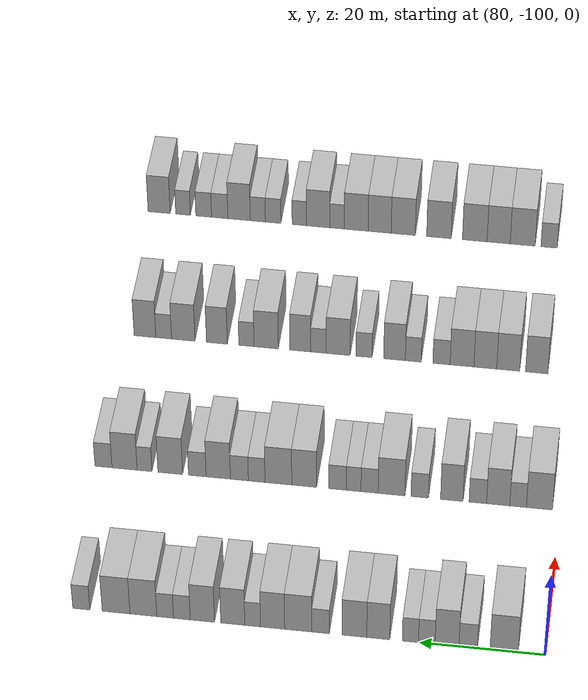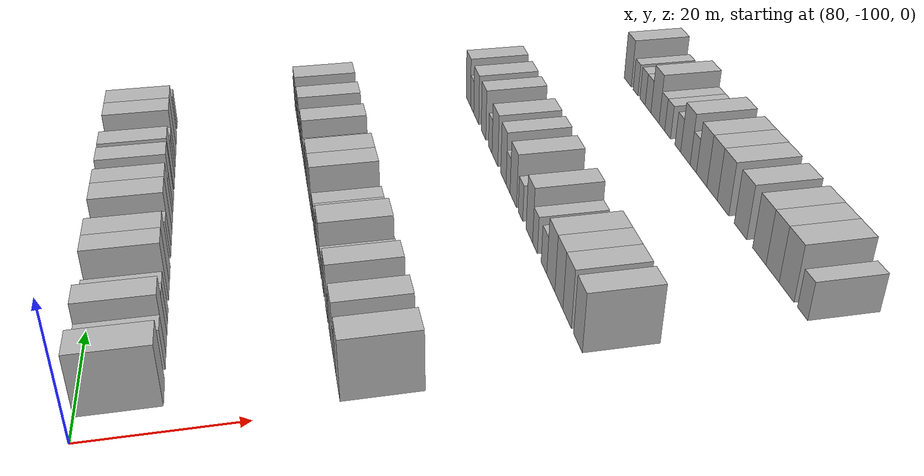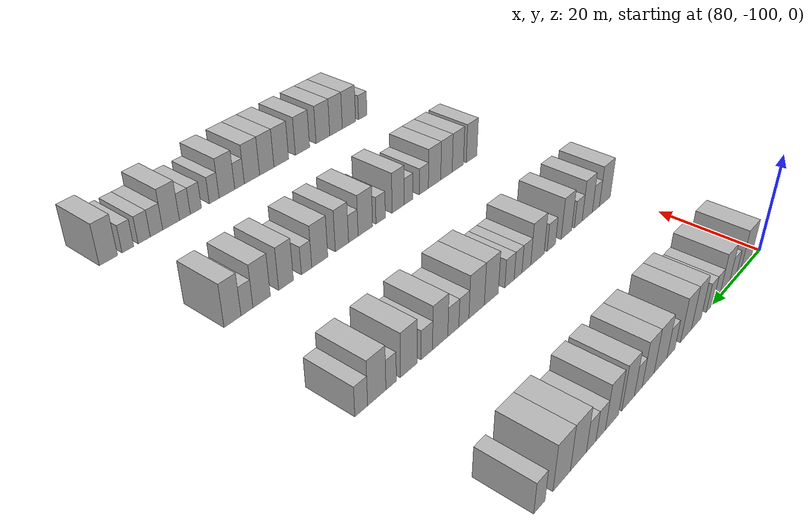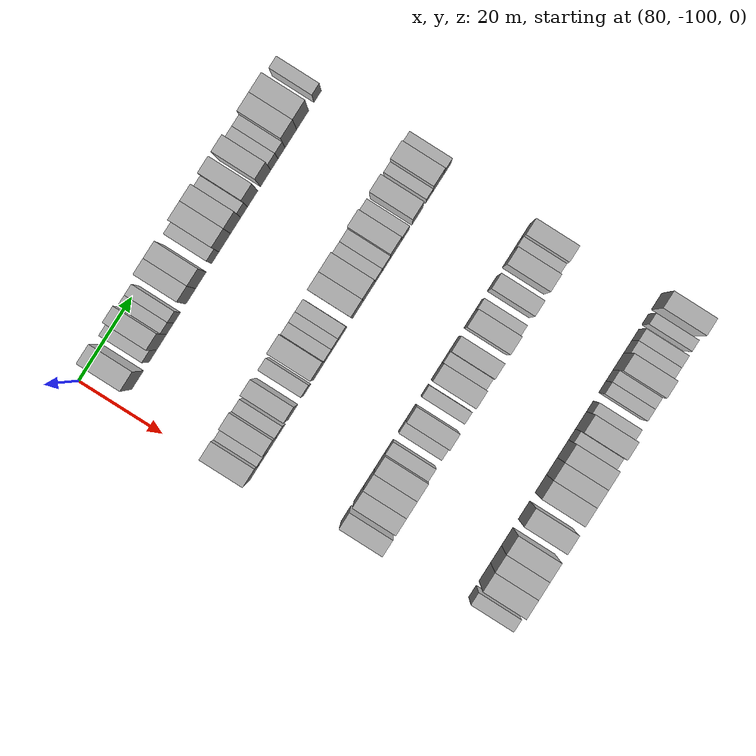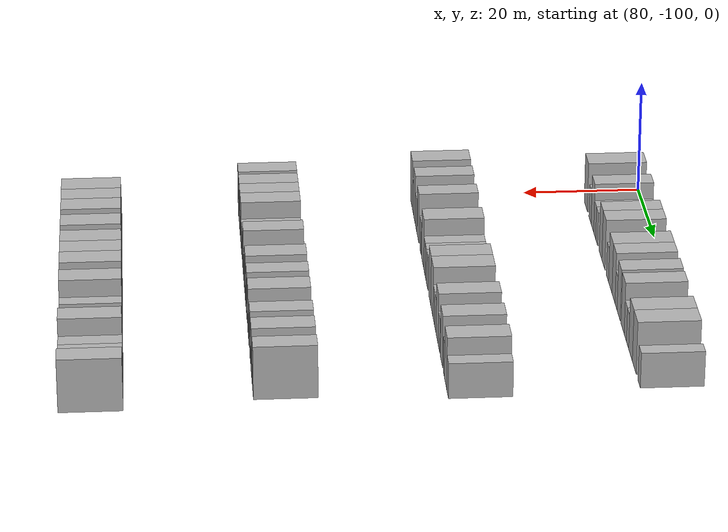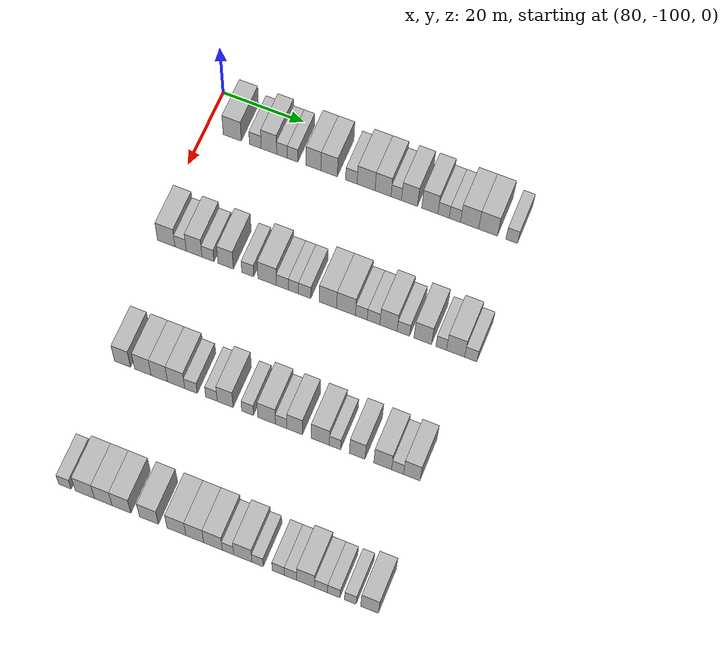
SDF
<sdf version="1.6">
 <world name="default">
  <model name="building_556">
   <static>1</static>
   <pose>85.0000 -93.4735 0 0.000000 0.000000 0.000000</pose>
   <link name="link">
    <pose>0 0 4.50 0 0 0</pose>
    <collision name="collision"><geometry><box><size>10.0000 4.4961 9.0000</size></box></geometry></collision>
    <visual name="visual">
     <cast_shadows>0</cast_shadows>
     <geometry><box><size>10.0000 4.4961 9.0000</size></box></geometry>
     <material>
      <script>
       <uri>model://HANNAS_wall/materials/scripts</uri>
       <uri>model://HANNAS_wall/materials/textures</uri>
       <name>vrc/HANNAS_wall</name>
      </script>
     </material>
    </visual>
   </link>
  </model>
  <model name="building_557">
   <static>1</static>
   <pose>85.0000 -87.7557 0 0.000000 0.000000 0.000000</pose>
   <link name="link">
    <pose>0 0 3.00 0 0 0</pose>
    <collision name="collision"><geometry><box><size>10.0000 2.9395 6.0000</size></box></geometry></collision>
    <visual name="visual">
     <cast_shadows>0</cast_shadows>
     <geometry><box><size>10.0000 2.9395 6.0000</size></box></geometry>
     <material>
      <script>
       <uri>model://HANNAS_wall/materials/scripts</uri>
       <uri>model://HANNAS_wall/materials/textures</uri>
       <name>vrc/HANNAS_wall</name>
      </script>
     </material>
    </visual>
   </link>
  </model>
  <model name="building_558">
   <static>1</static>
   <pose>85.0000 -84.3860 0 0.000000 0.000000 0.000000</pose>
   <link name="link">
    <pose>0 0 4.50 0 0 0</pose>
    <collision name="collision"><geometry><box><size>10.0000 3.7999 9.0000</size></box></geometry></collision>
    <visual name="visual">
     <cast_shadows>0</cast_shadows>
     <geometry><box><size>10.0000 3.7999 9.0000</size></box></geometry>
     <material>
      <script>
       <uri>model://HANNAS_wall/materials/scripts</uri>
       <uri>model://HANNAS_wall/materials/textures</uri>
       <name>vrc/HANNAS_wall</name>
      </script>
     </material>
    </visual>
   </link>
  </model>
  <model name="building_559">
   <static>1</static>
   <pose>85.0000 -81.1626 0 0.000000 0.000000 0.000000</pose>
   <link name="link">
    <pose>0 0 3.00 0 0 0</pose>
    <collision name="collision"><geometry><box><size>10.0000 2.6470 6.0000</size></box></geometry></collision>
    <visual name="visual">
     <cast_shadows>0</cast_shadows>
     <geometry><box><size>10.0000 2.6470 6.0000</size></box></geometry>
     <material>
      <script>
       <uri>model://HANNAS_wall/materials/scripts</uri>
       <uri>model://HANNAS_wall/materials/textures</uri>
       <name>vrc/HANNAS_wall</name>
      </script>
     </material>
    </visual>
   </link>
  </model>
  <model name="building_560">
   <static>1</static>
   <pose>85.0000 -78.5497 0 0.000000 0.000000 0.000000</pose>
   <link name="link">
    <pose>0 0 3.00 0 0 0</pose>
    <collision name="collision"><geometry><box><size>10.0000 2.5787 6.0000</size></box></geometry></collision>
    <visual name="visual">
     <cast_shadows>0</cast_shadows>
     <geometry><box><size>10.0000 2.5787 6.0000</size></box></geometry>
     <material>
      <script>
       <uri>model://HANNAS_wall/materials/scripts</uri>
       <uri>model://HANNAS_wall/materials/textures</uri>
       <name>vrc/HANNAS_wall</name>
      </script>
     </material>
    </visual>
   </link>
  </model>
  <model name="building_561">
   <static>1</static>
   <pose>85.0000 -73.4208 0 0.000000 0.000000 0.000000</pose>
   <link name="link">
    <pose>0 0 4.50 0 0 0</pose>
    <collision name="collision"><geometry><box><size>10.0000 3.6791 9.0000</size></box></geometry></collision>
    <visual name="visual">
     <cast_shadows>0</cast_shadows>
     <geometry><box><size>10.0000 3.6791 9.0000</size></box></geometry>
     <material>
      <script>
       <uri>model://HANNAS_wall/materials/scripts</uri>
       <uri>model://HANNAS_wall/materials/textures</uri>
       <name>vrc/HANNAS_wall</name>
      </script>
     </material>
    </visual>
   </link>
  </model>
  <model name="building_562">
   <static>1</static>
   <pose>85.0000 -69.5879 0 0.000000 0.000000 0.000000</pose>
   <link name="link">
    <pose>0 0 4.50 0 0 0</pose>
    <collision name="collision"><geometry><box><size>10.0000 3.9867 9.0000</size></box></geometry></collision>
    <visual name="visual">
     <cast_shadows>0</cast_shadows>
     <geometry><box><size>10.0000 3.9867 9.0000</size></box></geometry>
     <material>
      <script>
       <uri>model://HANNAS_wall/materials/scripts</uri>
       <uri>model://HANNAS_wall/materials/textures</uri>
       <name>vrc/HANNAS_wall</name>
      </script>
     </material>
    </visual>
   </link>
  </model>
  <model name="building_563">
   <static>1</static>
   <pose>85.0000 -64.1931 0 0.000000 0.000000 0.000000</pose>
   <link name="link">
    <pose>0 0 3.00 0 0 0</pose>
    <collision name="collision"><geometry><box><size>10.0000 2.8029 6.0000</size></box></geometry></collision>
    <visual name="visual">
     <cast_shadows>0</cast_shadows>
     <geometry><box><size>10.0000 2.8029 6.0000</size></box></geometry>
     <material>
      <script>
       <uri>model://HANNAS_wall/materials/scripts</uri>
       <uri>model://HANNAS_wall/materials/textures</uri>
       <name>vrc/HANNAS_wall</name>
      </script>
     </material>
    </visual>
   </link>
  </model>
  <model name="building_564">
   <static>1</static>
   <pose>85.0000 -60.6072 0 0.000000 0.000000 0.000000</pose>
   <link name="link">
    <pose>0 0 4.50 0 0 0</pose>
    <collision name="collision"><geometry><box><size>10.0000 4.3688 9.0000</size></box></geometry></collision>
    <visual name="visual">
     <cast_shadows>0</cast_shadows>
     <geometry><box><size>10.0000 4.3688 9.0000</size></box></geometry>
     <material>
      <script>
       <uri>model://HANNAS_wall/materials/scripts</uri>
       <uri>model://HANNAS_wall/materials/textures</uri>
       <name>vrc/HANNAS_wall</name>
      </script>
     </material>
    </visual>
   </link>
  </model>
  <model name="building_565">
   <static>1</static>
   <pose>85.0000 -56.4858 0 0.000000 0.000000 0.000000</pose>
   <link name="link">
    <pose>0 0 4.50 0 0 0</pose>
    <collision name="collision"><geometry><box><size>10.0000 3.8742 9.0000</size></box></geometry></collision>
    <visual name="visual">
     <cast_shadows>0</cast_shadows>
     <geometry><box><size>10.0000 3.8742 9.0000</size></box></geometry>
     <material>
      <script>
       <uri>model://HANNAS_wall/materials/scripts</uri>
       <uri>model://HANNAS_wall/materials/textures</uri>
       <name>vrc/HANNAS_wall</name>
      </script>
     </material>
    </visual>
   </link>
  </model>
  <model name="building_566">
   <static>1</static>
   <pose>85.0000 -53.2902 0 0.000000 0.000000 0.000000</pose>
   <link name="link">
    <pose>0 0 3.00 0 0 0</pose>
    <collision name="collision"><geometry><box><size>10.0000 2.5169 6.0000</size></box></geometry></collision>
    <visual name="visual">
     <cast_shadows>0</cast_shadows>
     <geometry><box><size>10.0000 2.5169 6.0000</size></box></geometry>
     <material>
      <script>
       <uri>model://HANNAS_wall/materials/scripts</uri>
       <uri>model://HANNAS_wall/materials/textures</uri>
       <name>vrc/HANNAS_wall</name>
      </script>
     </material>
    </visual>
   </link>
  </model>
  <model name="building_567">
   <static>1</static>
   <pose>85.0000 -50.0926 0 0.000000 0.000000 0.000000</pose>
   <link name="link">
    <pose>0 0 4.50 0 0 0</pose>
    <collision name="collision"><geometry><box><size>10.0000 3.8783 9.0000</size></box></geometry></collision>
    <visual name="visual">
     <cast_shadows>0</cast_shadows>
     <geometry><box><size>10.0000 3.8783 9.0000</size></box></geometry>
     <material>
      <script>
       <uri>model://HANNAS_wall/materials/scripts</uri>
       <uri>model://HANNAS_wall/materials/textures</uri>
       <name>vrc/HANNAS_wall</name>
      </script>
     </material>
    </visual>
   </link>
  </model>
  <model name="building_568">
   <static>1</static>
   <pose>85.0000 -45.1962 0 0.000000 0.000000 0.000000</pose>
   <link name="link">
    <pose>0 0 4.50 0 0 0</pose>
    <collision name="collision"><geometry><box><size>10.0000 3.9145 9.0000</size></box></geometry></collision>
    <visual name="visual">
     <cast_shadows>0</cast_shadows>
     <geometry><box><size>10.0000 3.9145 9.0000</size></box></geometry>
     <material>
      <script>
       <uri>model://HANNAS_wall/materials/scripts</uri>
       <uri>model://HANNAS_wall/materials/textures</uri>
       <name>vrc/HANNAS_wall</name>
      </script>
     </material>
    </visual>
   </link>
  </model>
  <model name="building_569">
   <static>1</static>
   <pose>85.0000 -41.8836 0 0.000000 0.000000 0.000000</pose>
   <link name="link">
    <pose>0 0 3.00 0 0 0</pose>
    <collision name="collision"><geometry><box><size>10.0000 2.7107 6.0000</size></box></geometry></collision>
    <visual name="visual">
     <cast_shadows>0</cast_shadows>
     <geometry><box><size>10.0000 2.7107 6.0000</size></box></geometry>
     <material>
      <script>
       <uri>model://HANNAS_wall/materials/scripts</uri>
       <uri>model://HANNAS_wall/materials/textures</uri>
       <name>vrc/HANNAS_wall</name>
      </script>
     </material>
    </visual>
   </link>
  </model>
  <model name="building_570">
   <static>1</static>
   <pose>85.0000 -39.1856 0 0.000000 0.000000 0.000000</pose>
   <link name="link">
    <pose>0 0 3.00 0 0 0</pose>
    <collision name="collision"><geometry><box><size>10.0000 2.6853 6.0000</size></box></geometry></collision>
    <visual name="visual">
     <cast_shadows>0</cast_shadows>
     <geometry><box><size>10.0000 2.6853 6.0000</size></box></geometry>
     <material>
      <script>
       <uri>model://HANNAS_wall/materials/scripts</uri>
       <uri>model://HANNAS_wall/materials/textures</uri>
       <name>vrc/HANNAS_wall</name>
      </script>
     </material>
    </visual>
   </link>
  </model>
  <model name="building_571">
   <static>1</static>
   <pose>85.0000 -35.6738 0 0.000000 0.000000 0.000000</pose>
   <link name="link">
    <pose>0 0 4.50 0 0 0</pose>
    <collision name="collision"><geometry><box><size>10.0000 4.3384 9.0000</size></box></geometry></collision>
    <visual name="visual">
     <cast_shadows>0</cast_shadows>
     <geometry><box><size>10.0000 4.3384 9.0000</size></box></geometry>
     <material>
      <script>
       <uri>model://HANNAS_wall/materials/scripts</uri>
       <uri>model://HANNAS_wall/materials/textures</uri>
       <name>vrc/HANNAS_wall</name>
      </script>
     </material>
    </visual>
   </link>
  </model>
  <model name="building_572">
   <static>1</static>
   <pose>85.0000 -31.2553 0 0.000000 0.000000 0.000000</pose>
   <link name="link">
    <pose>0 0 4.50 0 0 0</pose>
    <collision name="collision"><geometry><box><size>10.0000 4.4984 9.0000</size></box></geometry></collision>
    <visual name="visual">
     <cast_shadows>0</cast_shadows>
     <geometry><box><size>10.0000 4.4984 9.0000</size></box></geometry>
     <material>
      <script>
       <uri>model://HANNAS_wall/materials/scripts</uri>
       <uri>model://HANNAS_wall/materials/textures</uri>
       <name>vrc/HANNAS_wall</name>
      </script>
     </material>
    </visual>
   </link>
  </model>
  <model name="building_573">
   <static>1</static>
   <pose>85.0000 -25.6224 0 0.000000 0.000000 0.000000</pose>
   <link name="link">
    <pose>0 0 3.00 0 0 0</pose>
    <collision name="collision"><geometry><box><size>10.0000 2.7674 6.0000</size></box></geometry></collision>
    <visual name="visual">
     <cast_shadows>0</cast_shadows>
     <geometry><box><size>10.0000 2.7674 6.0000</size></box></geometry>
     <material>
      <script>
       <uri>model://HANNAS_wall/materials/scripts</uri>
       <uri>model://HANNAS_wall/materials/textures</uri>
       <name>vrc/HANNAS_wall</name>
      </script>
     </material>
    </visual>
   </link>
  </model>
  <model name="building_782">
   <static>1</static>
   <pose>115.0000 -96.5551 0 0.000000 0.000000 0.000000</pose>
   <link name="link">
    <pose>0 0 4.50 0 0 0</pose>
    <collision name="collision"><geometry><box><size>10.0000 4.2841 9.0000</size></box></geometry></collision>
    <visual name="visual">
     <cast_shadows>0</cast_shadows>
     <geometry><box><size>10.0000 4.2841 9.0000</size></box></geometry>
     <material>
      <script>
       <uri>model://HANNAS_wall/materials/scripts</uri>
       <uri>model://HANNAS_wall/materials/textures</uri>
       <name>vrc/HANNAS_wall</name>
      </script>
     </material>
    </visual>
   </link>
  </model>
  <model name="building_783">
   <static>1</static>
   <pose>115.0000 -93.0472 0 0.000000 0.000000 0.000000</pose>
   <link name="link">
    <pose>0 0 3.00 0 0 0</pose>
    <collision name="collision"><geometry><box><size>10.0000 2.7316 6.0000</size></box></geometry></collision>
    <visual name="visual">
     <cast_shadows>0</cast_shadows>
     <geometry><box><size>10.0000 2.7316 6.0000</size></box></geometry>
     <material>
      <script>
       <uri>model://HANNAS_wall/materials/scripts</uri>
       <uri>model://HANNAS_wall/materials/textures</uri>
       <name>vrc/HANNAS_wall</name>
      </script>
     </material>
    </visual>
   </link>
  </model>
  <model name="building_784">
   <static>1</static>
   <pose>115.0000 -89.7655 0 0.000000 0.000000 0.000000</pose>
   <link name="link">
    <pose>0 0 4.50 0 0 0</pose>
    <collision name="collision"><geometry><box><size>10.0000 3.8319 9.0000</size></box></geometry></collision>
    <visual name="visual">
     <cast_shadows>0</cast_shadows>
     <geometry><box><size>10.0000 3.8319 9.0000</size></box></geometry>
     <material>
      <script>
       <uri>model://HANNAS_wall/materials/scripts</uri>
       <uri>model://HANNAS_wall/materials/textures</uri>
       <name>vrc/HANNAS_wall</name>
      </script>
     </material>
    </visual>
   </link>
  </model>
  <model name="building_785">
   <static>1</static>
   <pose>115.0000 -86.4086 0 0.000000 0.000000 0.000000</pose>
   <link name="link">
    <pose>0 0 3.00 0 0 0</pose>
    <collision name="collision"><geometry><box><size>10.0000 2.8818 6.0000</size></box></geometry></collision>
    <visual name="visual">
     <cast_shadows>0</cast_shadows>
     <geometry><box><size>10.0000 2.8818 6.0000</size></box></geometry>
     <material>
      <script>
       <uri>model://HANNAS_wall/materials/scripts</uri>
       <uri>model://HANNAS_wall/materials/textures</uri>
       <name>vrc/HANNAS_wall</name>
      </script>
     </material>
    </visual>
   </link>
  </model>
  <model name="building_786">
   <static>1</static>
   <pose>115.0000 -82.1113 0 0.000000 0.000000 0.000000</pose>
   <link name="link">
    <pose>0 0 4.50 0 0 0</pose>
    <collision name="collision"><geometry><box><size>10.0000 3.7129 9.0000</size></box></geometry></collision>
    <visual name="visual">
     <cast_shadows>0</cast_shadows>
     <geometry><box><size>10.0000 3.7129 9.0000</size></box></geometry>
     <material>
      <script>
       <uri>model://HANNAS_wall/materials/scripts</uri>
       <uri>model://HANNAS_wall/materials/textures</uri>
       <name>vrc/HANNAS_wall</name>
      </script>
     </material>
    </visual>
   </link>
  </model>
  <model name="building_787">
   <static>1</static>
   <pose>115.0000 -76.8073 0 0.000000 0.000000 0.000000</pose>
   <link name="link">
    <pose>0 0 3.00 0 0 0</pose>
    <collision name="collision"><geometry><box><size>10.0000 2.8951 6.0000</size></box></geometry></collision>
    <visual name="visual">
     <cast_shadows>0</cast_shadows>
     <geometry><box><size>10.0000 2.8951 6.0000</size></box></geometry>
     <material>
      <script>
       <uri>model://HANNAS_wall/materials/scripts</uri>
       <uri>model://HANNAS_wall/materials/textures</uri>
       <name>vrc/HANNAS_wall</name>
      </script>
     </material>
    </visual>
   </link>
  </model>
  <model name="building_788">
   <static>1</static>
   <pose>115.0000 -72.1431 0 0.000000 0.000000 0.000000</pose>
   <link name="link">
    <pose>0 0 4.50 0 0 0</pose>
    <collision name="collision"><geometry><box><size>10.0000 4.4333 9.0000</size></box></geometry></collision>
    <visual name="visual">
     <cast_shadows>0</cast_shadows>
     <geometry><box><size>10.0000 4.4333 9.0000</size></box></geometry>
     <material>
      <script>
       <uri>model://HANNAS_wall/materials/scripts</uri>
       <uri>model://HANNAS_wall/materials/textures</uri>
       <name>vrc/HANNAS_wall</name>
      </script>
     </material>
    </visual>
   </link>
  </model>
  <model name="building_789">
   <static>1</static>
   <pose>115.0000 -68.5012 0 0.000000 0.000000 0.000000</pose>
   <link name="link">
    <pose>0 0 3.00 0 0 0</pose>
    <collision name="collision"><geometry><box><size>10.0000 2.8504 6.0000</size></box></geometry></collision>
    <visual name="visual">
     <cast_shadows>0</cast_shadows>
     <geometry><box><size>10.0000 2.8504 6.0000</size></box></geometry>
     <material>
      <script>
       <uri>model://HANNAS_wall/materials/scripts</uri>
       <uri>model://HANNAS_wall/materials/textures</uri>
       <name>vrc/HANNAS_wall</name>
      </script>
     </material>
    </visual>
   </link>
  </model>
  <model name="building_790">
   <static>1</static>
   <pose>115.0000 -65.8462 0 0.000000 0.000000 0.000000</pose>
   <link name="link">
    <pose>0 0 3.00 0 0 0</pose>
    <collision name="collision"><geometry><box><size>10.0000 2.4597 6.0000</size></box></geometry></collision>
    <visual name="visual">
     <cast_shadows>0</cast_shadows>
     <geometry><box><size>10.0000 2.4597 6.0000</size></box></geometry>
     <material>
      <script>
       <uri>model://HANNAS_wall/materials/scripts</uri>
       <uri>model://HANNAS_wall/materials/textures</uri>
       <name>vrc/HANNAS_wall</name>
      </script>
     </material>
    </visual>
   </link>
  </model>
  <model name="building_791">
   <static>1</static>
   <pose>115.0000 -63.1604 0 0.000000 0.000000 0.000000</pose>
   <link name="link">
    <pose>0 0 3.00 0 0 0</pose>
    <collision name="collision"><geometry><box><size>10.0000 2.9119 6.0000</size></box></geometry></collision>
    <visual name="visual">
     <cast_shadows>0</cast_shadows>
     <geometry><box><size>10.0000 2.9119 6.0000</size></box></geometry>
     <material>
      <script>
       <uri>model://HANNAS_wall/materials/scripts</uri>
       <uri>model://HANNAS_wall/materials/textures</uri>
       <name>vrc/HANNAS_wall</name>
      </script>
     </material>
    </visual>
   </link>
  </model>
  <model name="building_792">
   <static>1</static>
   <pose>115.0000 -57.6357 0 0.000000 0.000000 0.000000</pose>
   <link name="link">
    <pose>0 0 4.50 0 0 0</pose>
    <collision name="collision"><geometry><box><size>10.0000 4.1374 9.0000</size></box></geometry></collision>
    <visual name="visual">
     <cast_shadows>0</cast_shadows>
     <geometry><box><size>10.0000 4.1374 9.0000</size></box></geometry>
     <material>
      <script>
       <uri>model://HANNAS_wall/materials/scripts</uri>
       <uri>model://HANNAS_wall/materials/textures</uri>
       <name>vrc/HANNAS_wall</name>
      </script>
     </material>
    </visual>
   </link>
  </model>
  <model name="building_793">
   <static>1</static>
   <pose>115.0000 -53.3440 0 0.000000 0.000000 0.000000</pose>
   <link name="link">
    <pose>0 0 4.50 0 0 0</pose>
    <collision name="collision"><geometry><box><size>10.0000 4.4460 9.0000</size></box></geometry></collision>
    <visual name="visual">
     <cast_shadows>0</cast_shadows>
     <geometry><box><size>10.0000 4.4460 9.0000</size></box></geometry>
     <material>
      <script>
       <uri>model://HANNAS_wall/materials/scripts</uri>
       <uri>model://HANNAS_wall/materials/textures</uri>
       <name>vrc/HANNAS_wall</name>
      </script>
     </material>
    </visual>
   </link>
  </model>
  <model name="building_794">
   <static>1</static>
   <pose>115.0000 -49.7245 0 0.000000 0.000000 0.000000</pose>
   <link name="link">
    <pose>0 0 3.00 0 0 0</pose>
    <collision name="collision"><geometry><box><size>10.0000 2.7931 6.0000</size></box></geometry></collision>
    <visual name="visual">
     <cast_shadows>0</cast_shadows>
     <geometry><box><size>10.0000 2.7931 6.0000</size></box></geometry>
     <material>
      <script>
       <uri>model://HANNAS_wall/materials/scripts</uri>
       <uri>model://HANNAS_wall/materials/textures</uri>
       <name>vrc/HANNAS_wall</name>
      </script>
     </material>
    </visual>
   </link>
  </model>
  <model name="building_795">
   <static>1</static>
   <pose>115.0000 -46.8283 0 0.000000 0.000000 0.000000</pose>
   <link name="link">
    <pose>0 0 3.00 0 0 0</pose>
    <collision name="collision"><geometry><box><size>10.0000 2.9991 6.0000</size></box></geometry></collision>
    <visual name="visual">
     <cast_shadows>0</cast_shadows>
     <geometry><box><size>10.0000 2.9991 6.0000</size></box></geometry>
     <material>
      <script>
       <uri>model://HANNAS_wall/materials/scripts</uri>
       <uri>model://HANNAS_wall/materials/textures</uri>
       <name>vrc/HANNAS_wall</name>
      </script>
     </material>
    </visual>
   </link>
  </model>
  <model name="building_796">
   <static>1</static>
   <pose>115.0000 -43.3021 0 0.000000 0.000000 0.000000</pose>
   <link name="link">
    <pose>0 0 4.50 0 0 0</pose>
    <collision name="collision"><geometry><box><size>10.0000 4.0533 9.0000</size></box></geometry></collision>
    <visual name="visual">
     <cast_shadows>0</cast_shadows>
     <geometry><box><size>10.0000 4.0533 9.0000</size></box></geometry>
     <material>
      <script>
       <uri>model://HANNAS_wall/materials/scripts</uri>
       <uri>model://HANNAS_wall/materials/textures</uri>
       <name>vrc/HANNAS_wall</name>
      </script>
     </material>
    </visual>
   </link>
  </model>
  <model name="building_797">
   <static>1</static>
   <pose>115.0000 -39.8076 0 0.000000 0.000000 0.000000</pose>
   <link name="link">
    <pose>0 0 3.00 0 0 0</pose>
    <collision name="collision"><geometry><box><size>10.0000 2.9357 6.0000</size></box></geometry></collision>
    <visual name="visual">
     <cast_shadows>0</cast_shadows>
     <geometry><box><size>10.0000 2.9357 6.0000</size></box></geometry>
     <material>
      <script>
       <uri>model://HANNAS_wall/materials/scripts</uri>
       <uri>model://HANNAS_wall/materials/textures</uri>
       <name>vrc/HANNAS_wall</name>
      </script>
     </material>
    </visual>
   </link>
  </model>
  <model name="building_798">
   <static>1</static>
   <pose>115.0000 -35.2749 0 0.000000 0.000000 0.000000</pose>
   <link name="link">
    <pose>0 0 4.50 0 0 0</pose>
    <collision name="collision"><geometry><box><size>10.0000 4.1298 9.0000</size></box></geometry></collision>
    <visual name="visual">
     <cast_shadows>0</cast_shadows>
     <geometry><box><size>10.0000 4.1298 9.0000</size></box></geometry>
     <material>
      <script>
       <uri>model://HANNAS_wall/materials/scripts</uri>
       <uri>model://HANNAS_wall/materials/textures</uri>
       <name>vrc/HANNAS_wall</name>
      </script>
     </material>
    </visual>
   </link>
  </model>
  <model name="building_799">
   <static>1</static>
   <pose>115.0000 -30.9714 0 0.000000 0.000000 0.000000</pose>
   <link name="link">
    <pose>0 0 3.00 0 0 0</pose>
    <collision name="collision"><geometry><box><size>10.0000 2.4772 6.0000</size></box></geometry></collision>
    <visual name="visual">
     <cast_shadows>0</cast_shadows>
     <geometry><box><size>10.0000 2.4772 6.0000</size></box></geometry>
     <material>
      <script>
       <uri>model://HANNAS_wall/materials/scripts</uri>
       <uri>model://HANNAS_wall/materials/textures</uri>
       <name>vrc/HANNAS_wall</name>
      </script>
     </material>
    </visual>
   </link>
  </model>
  <model name="building_800">
   <static>1</static>
   <pose>115.0000 -27.6182 0 0.000000 0.000000 0.000000</pose>
   <link name="link">
    <pose>0 0 4.50 0 0 0</pose>
    <collision name="collision"><geometry><box><size>10.0000 4.2292 9.0000</size></box></geometry></collision>
    <visual name="visual">
     <cast_shadows>0</cast_shadows>
     <geometry><box><size>10.0000 4.2292 9.0000</size></box></geometry>
     <material>
      <script>
       <uri>model://HANNAS_wall/materials/scripts</uri>
       <uri>model://HANNAS_wall/materials/textures</uri>
       <name>vrc/HANNAS_wall</name>
      </script>
     </material>
    </visual>
   </link>
  </model>
  <model name="building_801">
   <static>1</static>
   <pose>115.0000 -24.0736 0 0.000000 0.000000 0.000000</pose>
   <link name="link">
    <pose>0 0 3.00 0 0 0</pose>
    <collision name="collision"><geometry><box><size>10.0000 2.8601 6.0000</size></box></geometry></collision>
    <visual name="visual">
     <cast_shadows>0</cast_shadows>
     <geometry><box><size>10.0000 2.8601 6.0000</size></box></geometry>
     <material>
      <script>
       <uri>model://HANNAS_wall/materials/scripts</uri>
       <uri>model://HANNAS_wall/materials/textures</uri>
       <name>vrc/HANNAS_wall</name>
      </script>
     </material>
    </visual>
   </link>
  </model>
  <model name="building_1007">
   <static>1</static>
   <pose>145.0000 -93.5807 0 0.000000 0.000000 0.000000</pose>
   <link name="link">
    <pose>0 0 4.50 0 0 0</pose>
    <collision name="collision"><geometry><box><size>10.0000 3.8099 9.0000</size></box></geometry></collision>
    <visual name="visual">
     <cast_shadows>0</cast_shadows>
     <geometry><box><size>10.0000 3.8099 9.0000</size></box></geometry>
     <material>
      <script>
       <uri>model://HANNAS_wall/materials/scripts</uri>
       <uri>model://HANNAS_wall/materials/textures</uri>
       <name>vrc/HANNAS_wall</name>
      </script>
     </material>
    </visual>
   </link>
  </model>
  <model name="building_1008">
   <static>1</static>
   <pose>145.0000 -88.7167 0 0.000000 0.000000 0.000000</pose>
   <link name="link">
    <pose>0 0 4.50 0 0 0</pose>
    <collision name="collision"><geometry><box><size>10.0000 3.9180 9.0000</size></box></geometry></collision>
    <visual name="visual">
     <cast_shadows>0</cast_shadows>
     <geometry><box><size>10.0000 3.9180 9.0000</size></box></geometry>
     <material>
      <script>
       <uri>model://HANNAS_wall/materials/scripts</uri>
       <uri>model://HANNAS_wall/materials/textures</uri>
       <name>vrc/HANNAS_wall</name>
      </script>
     </material>
    </visual>
   </link>
  </model>
  <model name="building_1009">
   <static>1</static>
   <pose>145.0000 -84.8144 0 0.000000 0.000000 0.000000</pose>
   <link name="link">
    <pose>0 0 4.50 0 0 0</pose>
    <collision name="collision"><geometry><box><size>10.0000 3.8867 9.0000</size></box></geometry></collision>
    <visual name="visual">
     <cast_shadows>0</cast_shadows>
     <geometry><box><size>10.0000 3.8867 9.0000</size></box></geometry>
     <material>
      <script>
       <uri>model://HANNAS_wall/materials/scripts</uri>
       <uri>model://HANNAS_wall/materials/textures</uri>
       <name>vrc/HANNAS_wall</name>
      </script>
     </material>
    </visual>
   </link>
  </model>
  <model name="building_1010">
   <static>1</static>
   <pose>145.0000 -80.8288 0 0.000000 0.000000 0.000000</pose>
   <link name="link">
    <pose>0 0 4.50 0 0 0</pose>
    <collision name="collision"><geometry><box><size>10.0000 4.0845 9.0000</size></box></geometry></collision>
    <visual name="visual">
     <cast_shadows>0</cast_shadows>
     <geometry><box><size>10.0000 4.0845 9.0000</size></box></geometry>
     <material>
      <script>
       <uri>model://HANNAS_wall/materials/scripts</uri>
       <uri>model://HANNAS_wall/materials/textures</uri>
       <name>vrc/HANNAS_wall</name>
      </script>
     </material>
    </visual>
   </link>
  </model>
  <model name="building_1011">
   <static>1</static>
   <pose>145.0000 -77.3082 0 0.000000 0.000000 0.000000</pose>
   <link name="link">
    <pose>0 0 3.00 0 0 0</pose>
    <collision name="collision"><geometry><box><size>10.0000 2.9568 6.0000</size></box></geometry></collision>
    <visual name="visual">
     <cast_shadows>0</cast_shadows>
     <geometry><box><size>10.0000 2.9568 6.0000</size></box></geometry>
     <material>
      <script>
       <uri>model://HANNAS_wall/materials/scripts</uri>
       <uri>model://HANNAS_wall/materials/textures</uri>
       <name>vrc/HANNAS_wall</name>
      </script>
     </material>
    </visual>
   </link>
  </model>
  <model name="building_1012">
   <static>1</static>
   <pose>145.0000 -72.4718 0 0.000000 0.000000 0.000000</pose>
   <link name="link">
    <pose>0 0 3.00 0 0 0</pose>
    <collision name="collision"><geometry><box><size>10.0000 2.7159 6.0000</size></box></geometry></collision>
    <visual name="visual">
     <cast_shadows>0</cast_shadows>
     <geometry><box><size>10.0000 2.7159 6.0000</size></box></geometry>
     <material>
      <script>
       <uri>model://HANNAS_wall/materials/scripts</uri>
       <uri>model://HANNAS_wall/materials/textures</uri>
       <name>vrc/HANNAS_wall</name>
      </script>
     </material>
    </visual>
   </link>
  </model>
  <model name="building_1013">
   <static>1</static>
   <pose>145.0000 -69.2576 0 0.000000 0.000000 0.000000</pose>
   <link name="link">
    <pose>0 0 4.50 0 0 0</pose>
    <collision name="collision"><geometry><box><size>10.0000 3.7127 9.0000</size></box></geometry></collision>
    <visual name="visual">
     <cast_shadows>0</cast_shadows>
     <geometry><box><size>10.0000 3.7127 9.0000</size></box></geometry>
     <material>
      <script>
       <uri>model://HANNAS_wall/materials/scripts</uri>
       <uri>model://HANNAS_wall/materials/textures</uri>
       <name>vrc/HANNAS_wall</name>
      </script>
     </material>
    </visual>
   </link>
  </model>
  <model name="building_1014">
   <static>1</static>
   <pose>145.0000 -64.0193 0 0.000000 0.000000 0.000000</pose>
   <link name="link">
    <pose>0 0 3.00 0 0 0</pose>
    <collision name="collision"><geometry><box><size>10.0000 2.7638 6.0000</size></box></geometry></collision>
    <visual name="visual">
     <cast_shadows>0</cast_shadows>
     <geometry><box><size>10.0000 2.7638 6.0000</size></box></geometry>
     <material>
      <script>
       <uri>model://HANNAS_wall/materials/scripts</uri>
       <uri>model://HANNAS_wall/materials/textures</uri>
       <name>vrc/HANNAS_wall</name>
      </script>
     </material>
    </visual>
   </link>
  </model>
  <model name="building_1015">
   <static>1</static>
   <pose>145.0000 -59.5792 0 0.000000 0.000000 0.000000</pose>
   <link name="link">
    <pose>0 0 4.50 0 0 0</pose>
    <collision name="collision"><geometry><box><size>10.0000 4.1166 9.0000</size></box></geometry></collision>
    <visual name="visual">
     <cast_shadows>0</cast_shadows>
     <geometry><box><size>10.0000 4.1166 9.0000</size></box></geometry>
     <material>
      <script>
       <uri>model://HANNAS_wall/materials/scripts</uri>
       <uri>model://HANNAS_wall/materials/textures</uri>
       <name>vrc/HANNAS_wall</name>
      </script>
     </material>
    </visual>
   </link>
  </model>
  <model name="building_1016">
   <static>1</static>
   <pose>145.0000 -56.1876 0 0.000000 0.000000 0.000000</pose>
   <link name="link">
    <pose>0 0 3.00 0 0 0</pose>
    <collision name="collision"><geometry><box><size>10.0000 2.6666 6.0000</size></box></geometry></collision>
    <visual name="visual">
     <cast_shadows>0</cast_shadows>
     <geometry><box><size>10.0000 2.6666 6.0000</size></box></geometry>
     <material>
      <script>
       <uri>model://HANNAS_wall/materials/scripts</uri>
       <uri>model://HANNAS_wall/materials/textures</uri>
       <name>vrc/HANNAS_wall</name>
      </script>
     </material>
    </visual>
   </link>
  </model>
  <model name="building_1017">
   <static>1</static>
   <pose>145.0000 -53.0483 0 0.000000 0.000000 0.000000</pose>
   <link name="link">
    <pose>0 0 4.50 0 0 0</pose>
    <collision name="collision"><geometry><box><size>10.0000 3.6118 9.0000</size></box></geometry></collision>
    <visual name="visual">
     <cast_shadows>0</cast_shadows>
     <geometry><box><size>10.0000 3.6118 9.0000</size></box></geometry>
     <material>
      <script>
       <uri>model://HANNAS_wall/materials/scripts</uri>
       <uri>model://HANNAS_wall/materials/textures</uri>
       <name>vrc/HANNAS_wall</name>
      </script>
     </material>
    </visual>
   </link>
  </model>
  <model name="building_1018">
   <static>1</static>
   <pose>145.0000 -47.1475 0 0.000000 0.000000 0.000000</pose>
   <link name="link">
    <pose>0 0 4.50 0 0 0</pose>
    <collision name="collision"><geometry><box><size>10.0000 4.1899 9.0000</size></box></geometry></collision>
    <visual name="visual">
     <cast_shadows>0</cast_shadows>
     <geometry><box><size>10.0000 4.1899 9.0000</size></box></geometry>
     <material>
      <script>
       <uri>model://HANNAS_wall/materials/scripts</uri>
       <uri>model://HANNAS_wall/materials/textures</uri>
       <name>vrc/HANNAS_wall</name>
      </script>
     </material>
    </visual>
   </link>
  </model>
  <model name="building_1019">
   <static>1</static>
   <pose>145.0000 -43.7399 0 0.000000 0.000000 0.000000</pose>
   <link name="link">
    <pose>0 0 3.00 0 0 0</pose>
    <collision name="collision"><geometry><box><size>10.0000 2.6252 6.0000</size></box></geometry></collision>
    <visual name="visual">
     <cast_shadows>0</cast_shadows>
     <geometry><box><size>10.0000 2.6252 6.0000</size></box></geometry>
     <material>
      <script>
       <uri>model://HANNAS_wall/materials/scripts</uri>
       <uri>model://HANNAS_wall/materials/textures</uri>
       <name>vrc/HANNAS_wall</name>
      </script>
     </material>
    </visual>
   </link>
  </model>
  <model name="building_1020">
   <static>1</static>
   <pose>145.0000 -38.6248 0 0.000000 0.000000 0.000000</pose>
   <link name="link">
    <pose>0 0 4.50 0 0 0</pose>
    <collision name="collision"><geometry><box><size>10.0000 3.6049 9.0000</size></box></geometry></collision>
    <visual name="visual">
     <cast_shadows>0</cast_shadows>
     <geometry><box><size>10.0000 3.6049 9.0000</size></box></geometry>
     <material>
      <script>
       <uri>model://HANNAS_wall/materials/scripts</uri>
       <uri>model://HANNAS_wall/materials/textures</uri>
       <name>vrc/HANNAS_wall</name>
      </script>
     </material>
    </visual>
   </link>
  </model>
  <model name="building_1021">
   <static>1</static>
   <pose>145.0000 -32.7917 0 0.000000 0.000000 0.000000</pose>
   <link name="link">
    <pose>0 0 4.50 0 0 0</pose>
    <collision name="collision"><geometry><box><size>10.0000 4.0613 9.0000</size></box></geometry></collision>
    <visual name="visual">
     <cast_shadows>0</cast_shadows>
     <geometry><box><size>10.0000 4.0613 9.0000</size></box></geometry>
     <material>
      <script>
       <uri>model://HANNAS_wall/materials/scripts</uri>
       <uri>model://HANNAS_wall/materials/textures</uri>
       <name>vrc/HANNAS_wall</name>
      </script>
     </material>
    </visual>
   </link>
  </model>
  <model name="building_1022">
   <static>1</static>
   <pose>145.0000 -29.3999 0 0.000000 0.000000 0.000000</pose>
   <link name="link">
    <pose>0 0 3.00 0 0 0</pose>
    <collision name="collision"><geometry><box><size>10.0000 2.7223 6.0000</size></box></geometry></collision>
    <visual name="visual">
     <cast_shadows>0</cast_shadows>
     <geometry><box><size>10.0000 2.7223 6.0000</size></box></geometry>
     <material>
      <script>
       <uri>model://HANNAS_wall/materials/scripts</uri>
       <uri>model://HANNAS_wall/materials/textures</uri>
       <name>vrc/HANNAS_wall</name>
      </script>
     </material>
    </visual>
   </link>
  </model>
  <model name="building_1023">
   <static>1</static>
   <pose>145.0000 -26.1529 0 0.000000 0.000000 0.000000</pose>
   <link name="link">
    <pose>0 0 4.50 0 0 0</pose>
    <collision name="collision"><geometry><box><size>10.0000 3.7719 9.0000</size></box></geometry></collision>
    <visual name="visual">
     <cast_shadows>0</cast_shadows>
     <geometry><box><size>10.0000 3.7719 9.0000</size></box></geometry>
     <material>
      <script>
       <uri>model://HANNAS_wall/materials/scripts</uri>
       <uri>model://HANNAS_wall/materials/textures</uri>
       <name>vrc/HANNAS_wall</name>
      </script>
     </material>
    </visual>
   </link>
  </model>
  <model name="building_1234">
   <static>1</static>
   <pose>175.0000 -93.2303 0 0.000000 0.000000 0.000000</pose>
   <link name="link">
    <pose>0 0 3.00 0 0 0</pose>
    <collision name="collision"><geometry><box><size>10.0000 2.8915 6.0000</size></box></geometry></collision>
    <visual name="visual">
     <cast_shadows>0</cast_shadows>
     <geometry><box><size>10.0000 2.8915 6.0000</size></box></geometry>
     <material>
      <script>
       <uri>model://HANNAS_wall/materials/scripts</uri>
       <uri>model://HANNAS_wall/materials/textures</uri>
       <name>vrc/HANNAS_wall</name>
      </script>
     </material>
    </visual>
   </link>
  </model>
  <model name="building_1235">
   <static>1</static>
   <pose>175.0000 -88.5780 0 0.000000 0.000000 0.000000</pose>
   <link name="link">
    <pose>0 0 4.50 0 0 0</pose>
    <collision name="collision"><geometry><box><size>10.0000 4.4131 9.0000</size></box></geometry></collision>
    <visual name="visual">
     <cast_shadows>0</cast_shadows>
     <geometry><box><size>10.0000 4.4131 9.0000</size></box></geometry>
     <material>
      <script>
       <uri>model://HANNAS_wall/materials/scripts</uri>
       <uri>model://HANNAS_wall/materials/textures</uri>
       <name>vrc/HANNAS_wall</name>
      </script>
     </material>
    </visual>
   </link>
  </model>
  <model name="building_1236">
   <static>1</static>
   <pose>175.0000 -84.3289 0 0.000000 0.000000 0.000000</pose>
   <link name="link">
    <pose>0 0 4.50 0 0 0</pose>
    <collision name="collision"><geometry><box><size>10.0000 4.0853 9.0000</size></box></geometry></collision>
    <visual name="visual">
     <cast_shadows>0</cast_shadows>
     <geometry><box><size>10.0000 4.0853 9.0000</size></box></geometry>
     <material>
      <script>
       <uri>model://HANNAS_wall/materials/scripts</uri>
       <uri>model://HANNAS_wall/materials/textures</uri>
       <name>vrc/HANNAS_wall</name>
      </script>
     </material>
    </visual>
   </link>
  </model>
  <model name="building_1237">
   <static>1</static>
   <pose>175.0000 -80.1066 0 0.000000 0.000000 0.000000</pose>
   <link name="link">
    <pose>0 0 4.50 0 0 0</pose>
    <collision name="collision"><geometry><box><size>10.0000 4.3592 9.0000</size></box></geometry></collision>
    <visual name="visual">
     <cast_shadows>0</cast_shadows>
     <geometry><box><size>10.0000 4.3592 9.0000</size></box></geometry>
     <material>
      <script>
       <uri>model://HANNAS_wall/materials/scripts</uri>
       <uri>model://HANNAS_wall/materials/textures</uri>
       <name>vrc/HANNAS_wall</name>
      </script>
     </material>
    </visual>
   </link>
  </model>
  <model name="building_1238">
   <static>1</static>
   <pose>175.0000 -73.7531 0 0.000000 0.000000 0.000000</pose>
   <link name="link">
    <pose>0 0 4.50 0 0 0</pose>
    <collision name="collision"><geometry><box><size>10.0000 4.3479 9.0000</size></box></geometry></collision>
    <visual name="visual">
     <cast_shadows>0</cast_shadows>
     <geometry><box><size>10.0000 4.3479 9.0000</size></box></geometry>
     <material>
      <script>
       <uri>model://HANNAS_wall/materials/scripts</uri>
       <uri>model://HANNAS_wall/materials/textures</uri>
       <name>vrc/HANNAS_wall</name>
      </script>
     </material>
    </visual>
   </link>
  </model>
  <model name="building_1239">
   <static>1</static>
   <pose>175.0000 -67.4271 0 0.000000 0.000000 0.000000</pose>
   <link name="link">
    <pose>0 0 4.50 0 0 0</pose>
    <collision name="collision"><geometry><box><size>10.0000 4.3040 9.0000</size></box></geometry></collision>
    <visual name="visual">
     <cast_shadows>0</cast_shadows>
     <geometry><box><size>10.0000 4.3040 9.0000</size></box></geometry>
     <material>
      <script>
       <uri>model://HANNAS_wall/materials/scripts</uri>
       <uri>model://HANNAS_wall/materials/textures</uri>
       <name>vrc/HANNAS_wall</name>
      </script>
     </material>
    </visual>
   </link>
  </model>
  <model name="building_1240">
   <static>1</static>
   <pose>175.0000 -63.2311 0 0.000000 0.000000 0.000000</pose>
   <link name="link">
    <pose>0 0 4.50 0 0 0</pose>
    <collision name="collision"><geometry><box><size>10.0000 4.0880 9.0000</size></box></geometry></collision>
    <visual name="visual">
     <cast_shadows>0</cast_shadows>
     <geometry><box><size>10.0000 4.0880 9.0000</size></box></geometry>
     <material>
      <script>
       <uri>model://HANNAS_wall/materials/scripts</uri>
       <uri>model://HANNAS_wall/materials/textures</uri>
       <name>vrc/HANNAS_wall</name>
      </script>
     </material>
    </visual>
   </link>
  </model>
  <model name="building_1241">
   <static>1</static>
   <pose>175.0000 -59.0681 0 0.000000 0.000000 0.000000</pose>
   <link name="link">
    <pose>0 0 4.50 0 0 0</pose>
    <collision name="collision"><geometry><box><size>10.0000 4.2381 9.0000</size></box></geometry></collision>
    <visual name="visual">
     <cast_shadows>0</cast_shadows>
     <geometry><box><size>10.0000 4.2381 9.0000</size></box></geometry>
     <material>
      <script>
       <uri>model://HANNAS_wall/materials/scripts</uri>
       <uri>model://HANNAS_wall/materials/textures</uri>
       <name>vrc/HANNAS_wall</name>
      </script>
     </material>
    </visual>
   </link>
  </model>
  <model name="building_1242">
   <static>1</static>
   <pose>175.0000 -55.6426 0 0.000000 0.000000 0.000000</pose>
   <link name="link">
    <pose>0 0 3.00 0 0 0</pose>
    <collision name="collision"><geometry><box><size>10.0000 2.6129 6.0000</size></box></geometry></collision>
    <visual name="visual">
     <cast_shadows>0</cast_shadows>
     <geometry><box><size>10.0000 2.6129 6.0000</size></box></geometry>
     <material>
      <script>
       <uri>model://HANNAS_wall/materials/scripts</uri>
       <uri>model://HANNAS_wall/materials/textures</uri>
       <name>vrc/HANNAS_wall</name>
      </script>
     </material>
    </visual>
   </link>
  </model>
  <model name="building_1243">
   <static>1</static>
   <pose>175.0000 -52.2646 0 0.000000 0.000000 0.000000</pose>
   <link name="link">
    <pose>0 0 4.50 0 0 0</pose>
    <collision name="collision"><geometry><box><size>10.0000 4.1431 9.0000</size></box></geometry></collision>
    <visual name="visual">
     <cast_shadows>0</cast_shadows>
     <geometry><box><size>10.0000 4.1431 9.0000</size></box></geometry>
     <material>
      <script>
       <uri>model://HANNAS_wall/materials/scripts</uri>
       <uri>model://HANNAS_wall/materials/textures</uri>
       <name>vrc/HANNAS_wall</name>
      </script>
     </material>
    </visual>
   </link>
  </model>
  <model name="building_1244">
   <static>1</static>
   <pose>175.0000 -48.9158 0 0.000000 0.000000 0.000000</pose>
   <link name="link">
    <pose>0 0 3.00 0 0 0</pose>
    <collision name="collision"><geometry><box><size>10.0000 2.5545 6.0000</size></box></geometry></collision>
    <visual name="visual">
     <cast_shadows>0</cast_shadows>
     <geometry><box><size>10.0000 2.5545 6.0000</size></box></geometry>
     <material>
      <script>
       <uri>model://HANNAS_wall/materials/scripts</uri>
       <uri>model://HANNAS_wall/materials/textures</uri>
       <name>vrc/HANNAS_wall</name>
      </script>
     </material>
    </visual>
   </link>
  </model>
  <model name="building_1245">
   <static>1</static>
   <pose>175.0000 -44.2469 0 0.000000 0.000000 0.000000</pose>
   <link name="link">
    <pose>0 0 3.00 0 0 0</pose>
    <collision name="collision"><geometry><box><size>10.0000 2.7834 6.0000</size></box></geometry></collision>
    <visual name="visual">
     <cast_shadows>0</cast_shadows>
     <geometry><box><size>10.0000 2.7834 6.0000</size></box></geometry>
     <material>
      <script>
       <uri>model://HANNAS_wall/materials/scripts</uri>
       <uri>model://HANNAS_wall/materials/textures</uri>
       <name>vrc/HANNAS_wall</name>
      </script>
     </material>
    </visual>
   </link>
  </model>
  <model name="building_1246">
   <static>1</static>
   <pose>175.0000 -41.5081 0 0.000000 0.000000 0.000000</pose>
   <link name="link">
    <pose>0 0 3.00 0 0 0</pose>
    <collision name="collision"><geometry><box><size>10.0000 2.6942 6.0000</size></box></geometry></collision>
    <visual name="visual">
     <cast_shadows>0</cast_shadows>
     <geometry><box><size>10.0000 2.6942 6.0000</size></box></geometry>
     <material>
      <script>
       <uri>model://HANNAS_wall/materials/scripts</uri>
       <uri>model://HANNAS_wall/materials/textures</uri>
       <name>vrc/HANNAS_wall</name>
      </script>
     </material>
    </visual>
   </link>
  </model>
  <model name="building_1247">
   <static>1</static>
   <pose>175.0000 -38.1474 0 0.000000 0.000000 0.000000</pose>
   <link name="link">
    <pose>0 0 4.50 0 0 0</pose>
    <collision name="collision"><geometry><box><size>10.0000 4.0271 9.0000</size></box></geometry></collision>
    <visual name="visual">
     <cast_shadows>0</cast_shadows>
     <geometry><box><size>10.0000 4.0271 9.0000</size></box></geometry>
     <material>
      <script>
       <uri>model://HANNAS_wall/materials/scripts</uri>
       <uri>model://HANNAS_wall/materials/textures</uri>
       <name>vrc/HANNAS_wall</name>
      </script>
     </material>
    </visual>
   </link>
  </model>
  <model name="building_1248">
   <static>1</static>
   <pose>175.0000 -34.6710 0 0.000000 0.000000 0.000000</pose>
   <link name="link">
    <pose>0 0 3.00 0 0 0</pose>
    <collision name="collision"><geometry><box><size>10.0000 2.9257 6.0000</size></box></geometry></collision>
    <visual name="visual">
     <cast_shadows>0</cast_shadows>
     <geometry><box><size>10.0000 2.9257 6.0000</size></box></geometry>
     <material>
      <script>
       <uri>model://HANNAS_wall/materials/scripts</uri>
       <uri>model://HANNAS_wall/materials/textures</uri>
       <name>vrc/HANNAS_wall</name>
      </script>
     </material>
    </visual>
   </link>
  </model>
  <model name="building_1249">
   <static>1</static>
   <pose>175.0000 -31.8078 0 0.000000 0.000000 0.000000</pose>
   <link name="link">
    <pose>0 0 3.00 0 0 0</pose>
    <collision name="collision"><geometry><box><size>10.0000 2.8005 6.0000</size></box></geometry></collision>
    <visual name="visual">
     <cast_shadows>0</cast_shadows>
     <geometry><box><size>10.0000 2.8005 6.0000</size></box></geometry>
     <material>
      <script>
       <uri>model://HANNAS_wall/materials/scripts</uri>
       <uri>model://HANNAS_wall/materials/textures</uri>
       <name>vrc/HANNAS_wall</name>
      </script>
     </material>
    </visual>
   </link>
  </model>
  <model name="building_1250">
   <static>1</static>
   <pose>175.0000 -28.0982 0 0.000000 0.000000 0.000000</pose>
   <link name="link">
    <pose>0 0 3.00 0 0 0</pose>
    <collision name="collision"><geometry><box><size>10.0000 2.6188 6.0000</size></box></geometry></collision>
    <visual name="visual">
     <cast_shadows>0</cast_shadows>
     <geometry><box><size>10.0000 2.6188 6.0000</size></box></geometry>
     <material>
      <script>
       <uri>model://HANNAS_wall/materials/scripts</uri>
       <uri>model://HANNAS_wall/materials/textures</uri>
       <name>vrc/HANNAS_wall</name>
      </script>
     </material>
    </visual>
   </link>
  </model>
  <model name="building_1251">
   <static>1</static>
   <pose>175.0000 -23.8100 0 0.000000 0.000000 0.000000</pose>
   <link name="link">
    <pose>0 0 4.50 0 0 0</pose>
    <collision name="collision"><geometry><box><size>10.0000 3.9576 9.0000</size></box></geometry></collision>
    <visual name="visual">
     <cast_shadows>0</cast_shadows>
     <geometry><box><size>10.0000 3.9576 9.0000</size></box></geometry>
     <material>
      <script>
       <uri>model://HANNAS_wall/materials/scripts</uri>
       <uri>model://HANNAS_wall/materials/textures</uri>
       <name>vrc/HANNAS_wall</name>
      </script>
     </material>
    </visual>
   </link>
  </model>
 </world>
</sdf>
